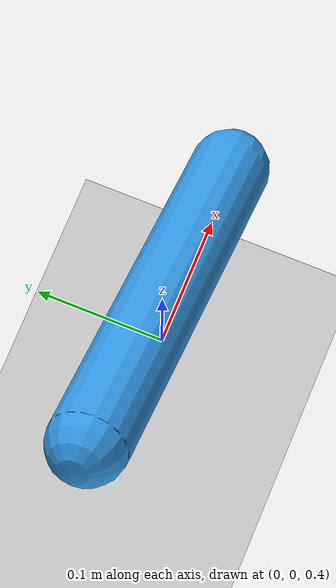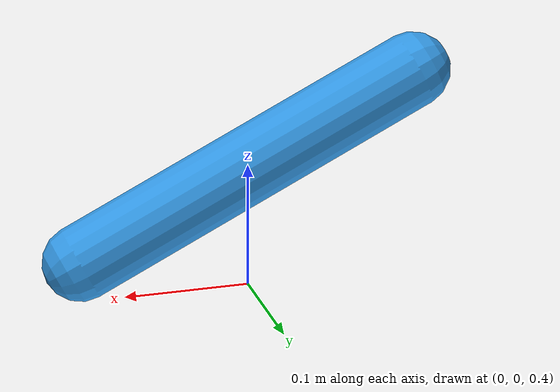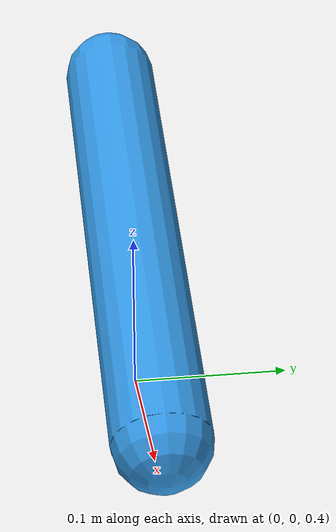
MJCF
<mujoco model="motor_position_control">
    <option timestep="0.002" gravity="0 0 -9.81"/>
    <compiler angle="radian"/>

    <worldbody>

        <!-- Light source -->
        <light
            name="main_light"
            pos="0 0 2"
            dir="0 0 -1"
            diffuse="1 1 1"
            specular="0.3 0.3 0.3"/>

        <!-- Floor -->
        <geom
            name="floor"
            type="plane"
            size="5 5 0.1"
            rgba="0.8 0.8 0.8 1"/>

        <!-- Motor system -->
        <body name="motor_base" pos="0 0 0.5">
            <joint
                name="motor_hinge"
                type="hinge"
                axis="0 1 0"
                limited="true"
                range="0 6.283185"
                damping="0.05"
                armature="0.01"/>

            <!-- Motor arm -->
            <geom
                type="capsule"
                size="0.03 0.15"
                euler="0 90 0"
                rgba="0.2 0.6 0.9 1"/>
        </body>

    </worldbody>

    <actuator>
        <!-- Position-controlled actuator (servo) -->
        <position
            name="motor_position"
            joint="motor_hinge"
            kp="1"
            ctrlrange="0 6.283185"/>
    </actuator>
</mujoco>
